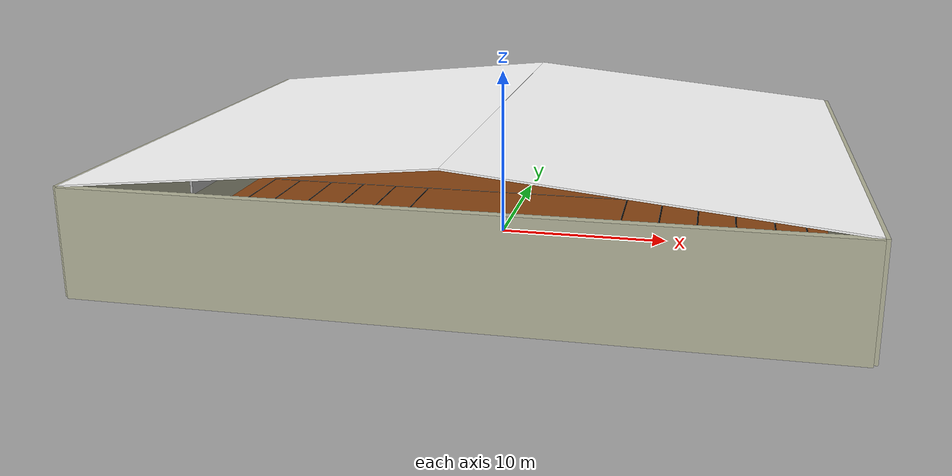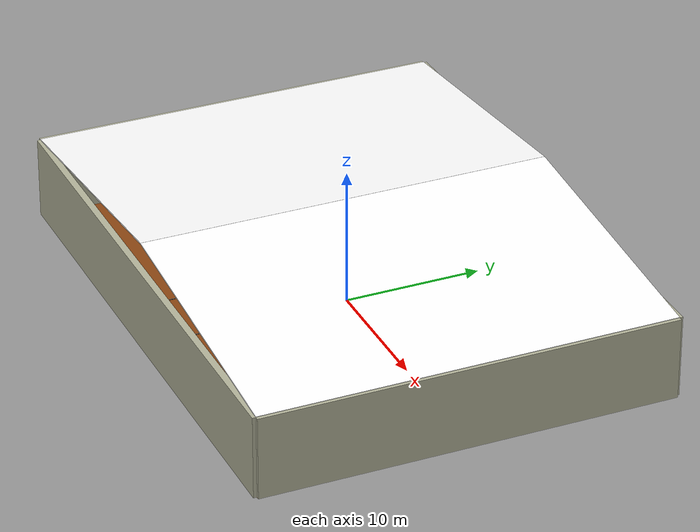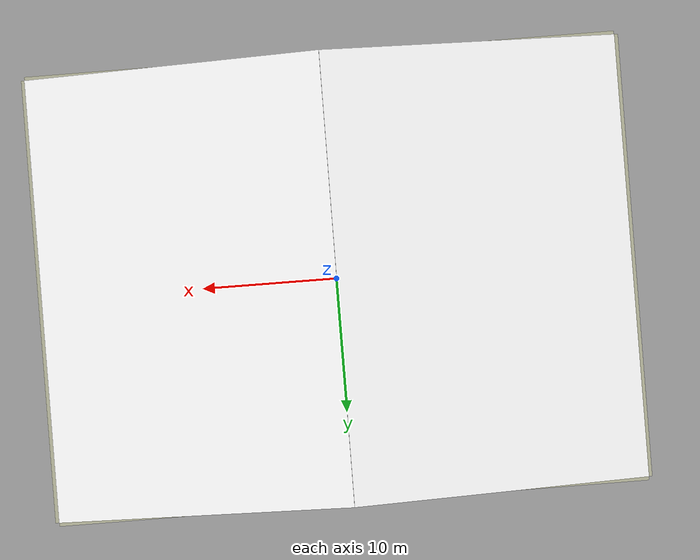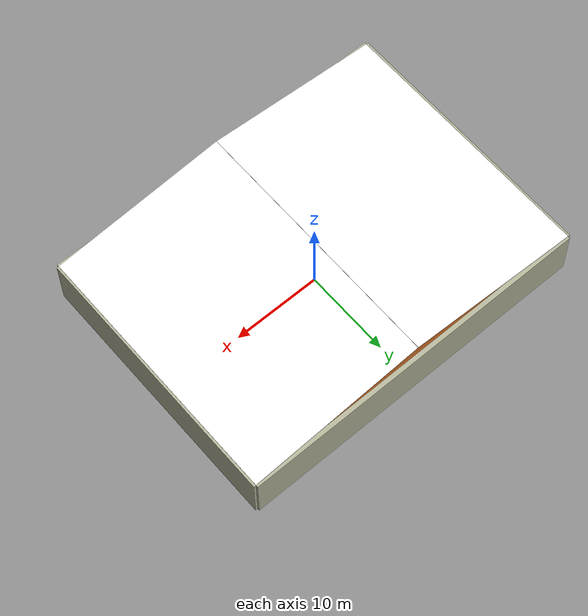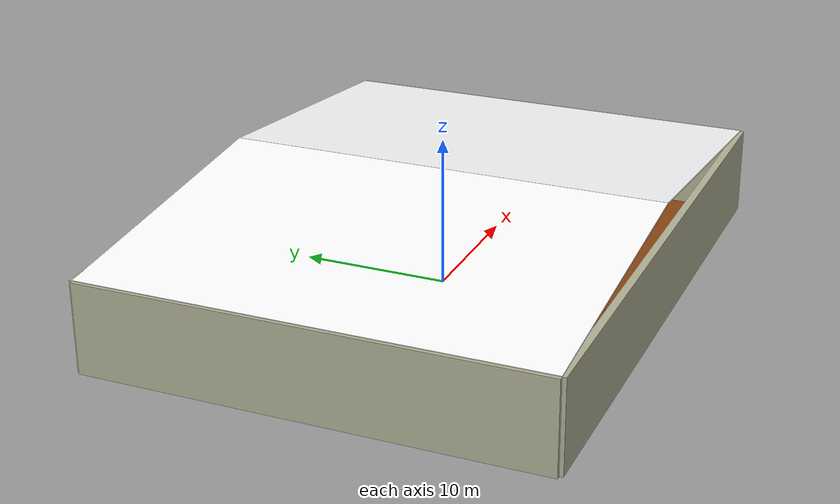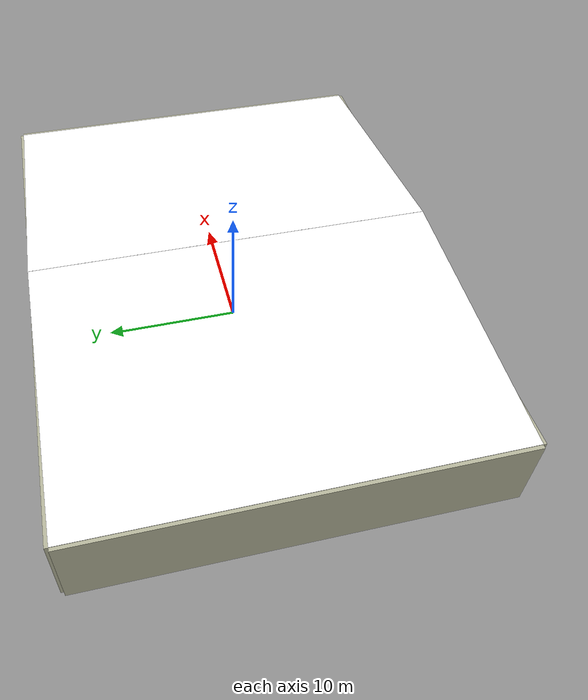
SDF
<sdf version="1.10">
 <world name="Advanced_Robotic_Warehouse_v7">
  <physics name="1ms" type="ignored">
   <max_step_size>0.001</max_step_size>
   <real_time_factor>1.0</real_time_factor>
  </physics>
  <plugin name="gz::sim::systems::Physics" filename="gz-sim-physics-system"/>
  <plugin name="gz::sim::systems::UserCommands" filename="gz-sim-user-commands-system"/>
  <plugin name="gz::sim::systems::SceneBroadcaster" filename="gz-sim-scene-broadcaster-system"/>
  <plugin name="gz::sim::systems::Contact" filename="gz-sim-contact-system"/>
  <plugin name="gz::sim::systems::Sensors" filename="gz-sim-sensors-system">
   <render_engine>ogre2</render_engine>
  </plugin>
  <gravity>0 0 -9.8</gravity>
  <atmosphere type="adiabatic"/>
  <scene>
   <ambient>0.4 0.4 0.4 1.0</ambient>
   <background>0.5 0.5 0.5 1</background>
   <shadows>true</shadows>
   <grid>false</grid>
   <origin_visual>false</origin_visual>
  </scene>
  <light type="point" name="light_1_1">
   <pose>-15 10 8 0 0 0</pose>
   <diffuse>0.8 0.8 0.7 1</diffuse>
   <specular>0.1 0.1 0.1 1</specular>
   <attenuation>
    <range>30</range>
    <linear>0.01</linear>
    <constant>0.2</constant>
    <quadratic>0.002</quadratic>
   </attenuation>
   <cast_shadows>false</cast_shadows>
  </light>
  <light type="point" name="light_1_2">
   <pose>0 10 8 0 0 0</pose>
   <diffuse>0.8 0.8 0.7 1</diffuse>
   <specular>0.1 0.1 0.1 1</specular>
   <attenuation>
    <range>30</range>
    <linear>0.01</linear>
    <constant>0.2</constant>
    <quadratic>0.002</quadratic>
   </attenuation>
   <cast_shadows>false</cast_shadows>
  </light>
  <light type="point" name="light_1_3">
   <pose>15 10 8 0 0 0</pose>
   <diffuse>0.8 0.8 0.7 1</diffuse>
   <specular>0.1 0.1 0.1 1</specular>
   <attenuation>
    <range>30</range>
    <linear>0.01</linear>
    <constant>0.2</constant>
    <quadratic>0.002</quadratic>
   </attenuation>
   <cast_shadows>false</cast_shadows>
  </light>
  <light type="point" name="light_2_1">
   <pose>-15 0 8 0 0 0</pose>
   <diffuse>0.8 0.8 0.7 1</diffuse>
   <specular>0.1 0.1 0.1 1</specular>
   <attenuation>
    <range>30</range>
    <linear>0.01</linear>
    <constant>0.2</constant>
    <quadratic>0.002</quadratic>
   </attenuation>
   <cast_shadows>false</cast_shadows>
  </light>
  <light type="point" name="light_2_2">
   <pose>0 0 8 0 0 0</pose>
   <diffuse>0.8 0.8 0.7 1</diffuse>
   <specular>0.1 0.1 0.1 1</specular>
   <attenuation>
    <range>30</range>
    <linear>0.01</linear>
    <constant>0.2</constant>
    <quadratic>0.002</quadratic>
   </attenuation>
   <cast_shadows>false</cast_shadows>
  </light>
  <light type="point" name="light_2_3">
   <pose>15 0 8 0 0 0</pose>
   <diffuse>0.8 0.8 0.7 1</diffuse>
   <specular>0.1 0.1 0.1 1</specular>
   <attenuation>
    <range>30</range>
    <linear>0.01</linear>
    <constant>0.2</constant>
    <quadratic>0.002</quadratic>
   </attenuation>
   <cast_shadows>false</cast_shadows>
  </light>
  <light type="point" name="light_3_1">
   <pose>-15 -10 8 0 0 0</pose>
   <diffuse>0.8 0.8 0.7 1</diffuse>
   <specular>0.1 0.1 0.1 1</specular>
   <attenuation>
    <range>30</range>
    <linear>0.01</linear>
    <constant>0.2</constant>
    <quadratic>0.002</quadratic>
   </attenuation>
   <cast_shadows>false</cast_shadows>
  </light>
  <light type="point" name="light_3_2">
   <pose>0 -10 8 0 0 0</pose>
   <diffuse>0.8 0.8 0.7 1</diffuse>
   <specular>0.1 0.1 0.1 1</specular>
   <attenuation>
    <range>30</range>
    <linear>0.01</linear>
    <constant>0.2</constant>
    <quadratic>0.002</quadratic>
   </attenuation>
   <cast_shadows>false</cast_shadows>
  </light>
  <light type="point" name="light_3_3">
   <pose>15 -10 8 0 0 0</pose>
   <diffuse>0.8 0.8 0.7 1</diffuse>
   <specular>0.1 0.1 0.1 1</specular>
   <attenuation>
    <range>30</range>
    <linear>0.01</linear>
    <constant>0.2</constant>
    <quadratic>0.002</quadratic>
   </attenuation>
   <cast_shadows>false</cast_shadows>
  </light>
  <include><uri>model://warehouse_ground</uri></include>
  <model name="lfr_line_north">
   <static>true</static>
   <pose>0 8 0.01 0 0 0</pose>
   <link name="link">
    <collision name="collision"><geometry><box><size>37 0.1 0.005</size></box></geometry></collision>
    <visual name="visual">
     <geometry><box><size>37 0.1 0.005</size></box></geometry>
     <material><ambient>0 0 0 1</ambient><diffuse>0 0 0 1</diffuse><specular>0 0 0 1</specular></material>
    </visual>
   </link>
  </model>
  <model name="lfr_line_south">
   <static>true</static>
   <pose>0 -8 0.01 0 0 0</pose>
   <link name="link">
    <collision name="collision"><geometry><box><size>37 0.1 0.005</size></box></geometry></collision>
    <visual name="visual">
     <geometry><box><size>37 0.1 0.005</size></box></geometry>
     <material><ambient>0 0 0 1</ambient><diffuse>0 0 0 1</diffuse><specular>0 0 0 1</specular></material>
    </visual>
   </link>
  </model>
  <model name="lfr_line_west">
   <static>true</static>
   <pose>-18.5 0 0.01 0 0 1.5707</pose>
   <link name="link">
    <collision name="collision"><geometry><box><size>16 0.1 0.005</size></box></geometry></collision>
    <visual name="visual">
     <geometry><box><size>16 0.1 0.005</size></box></geometry>
     <material><ambient>0 0 0 1</ambient><diffuse>0 0 0 1</diffuse><specular>0 0 0 1</specular></material>
    </visual>
   </link>
  </model>
  <model name="lfr_line_east">
   <static>true</static>
   <pose>18.5 0 0.01 0 0 1.5707</pose>
   <link name="link">
    <collision name="collision"><geometry><box><size>16 0.1 0.005</size></box></geometry></collision>
    <visual name="visual">
     <geometry><box><size>16 0.1 0.005</size></box></geometry>
     <material><ambient>0 0 0 1</ambient><diffuse>0 0 0 1</diffuse><specular>0 0 0 1</specular></material>
    </visual>
   </link>
  </model>
  <model name="lfr_line_aisle1">
   <static>true</static>
   <pose>-14.2 0 0.01 0 0 1.5707</pose>
   <link name="link">
    <collision name="collision"><geometry><box><size>16 0.1 0.005</size></box></geometry></collision>
    <visual name="visual">
     <geometry><box><size>16 0.1 0.005</size></box></geometry>
     <material><ambient>0 0 0 1</ambient><diffuse>0 0 0 1</diffuse><specular>0 0 0 1</specular></material>
    </visual>
   </link>
  </model>
  <model name="lfr_line_aisle2">
   <static>true</static>
   <pose>-9.4 0 0.01 0 0 1.5707</pose>
   <link name="link">
    <collision name="collision"><geometry><box><size>16 0.1 0.005</size></box></geometry></collision>
    <visual name="visual">
     <geometry><box><size>16 0.1 0.005</size></box></geometry>
     <material><ambient>0 0 0 1</ambient><diffuse>0 0 0 1</diffuse><specular>0 0 0 1</specular></material>
    </visual>
   </link>
  </model>
  <model name="lfr_line_aisle3_main">
   <static>true</static>
   <pose>0 0 0.01 0 0 1.5707</pose>
   <link name="link">
    <collision name="collision"><geometry><box><size>16 0.1 0.005</size></box></geometry></collision>
    <visual name="visual">
     <geometry><box><size>16 0.1 0.005</size></box></geometry>
     <material><ambient>0 0 0 1</ambient><diffuse>0 0 0 1</diffuse><specular>0 0 0 1</specular></material>
    </visual>
   </link>
  </model>
  <model name="lfr_line_aisle4">
   <static>true</static>
   <pose>9.4 0 0.01 0 0 1.5707</pose>
   <link name="link">
    <collision name="collision"><geometry><box><size>16 0.1 0.005</size></box></geometry></collision>
    <visual name="visual">
     <geometry><box><size>16 0.1 0.005</size></box></geometry>
     <material><ambient>0 0 0 1</ambient><diffuse>0 0 0 1</diffuse><specular>0 0 0 1</specular></material>
    </visual>
   </link>
  </model>
  <model name="lfr_line_aisle5">
   <static>true</static>
   <pose>14.2 0 0.01 0 0 1.5707</pose>
   <link name="link">
    <collision name="collision"><geometry><box><size>16 0.1 0.005</size></box></geometry></collision>
    <visual name="visual">
     <geometry><box><size>16 0.1 0.005</size></box></geometry>
     <material><ambient>0 0 0 1</ambient><diffuse>0 0 0 1</diffuse><specular>0 0 0 1</specular></material>
    </visual>
   </link>
  </model>
  <model name="lfr_line_aisle_L1">
   <static>true</static>
   <pose>-16.6 0 0.01 0 0 1.5707</pose>
   <link name="link">
    <collision name="collision"><geometry><box><size>16 0.1 0.005</size></box></geometry></collision>
    <visual name="visual">
     <geometry><box><size>16 0.1 0.005</size></box></geometry>
     <material><ambient>0 0 0 1</ambient><diffuse>0 0 0 1</diffuse><specular>0 0 0 1</specular></material>
    </visual>
   </link>
  </model>
  <model name="lfr_line_aisle_L2">
   <static>true</static>
   <pose>-11.8 0 0.01 0 0 1.5707</pose>
   <link name="link">
    <collision name="collision"><geometry><box><size>16 0.1 0.005</size></box></geometry></collision>
    <visual name="visual">
     <geometry><box><size>16 0.1 0.005</size></box></geometry>
     <material><ambient>0 0 0 1</ambient><diffuse>0 0 0 1</diffuse><specular>0 0 0 1</specular></material>
    </visual>
   </link>
  </model>
  <model name="lfr_line_aisle_L3">
   <static>true</static>
   <pose>-7.0 0 0.01 0 0 1.5707</pose>
   <link name="link">
    <collision name="collision"><geometry><box><size>16 0.1 0.005</size></box></geometry></collision>
    <visual name="visual">
     <geometry><box><size>16 0.1 0.005</size></box></geometry>
     <material><ambient>0 0 0 1</ambient><diffuse>0 0 0 1</diffuse><specular>0 0 0 1</specular></material>
    </visual>
   </link>
  </model>
  <model name="lfr_line_aisle_R1">
   <static>true</static>
   <pose>7.0 0 0.01 0 0 1.5707</pose>
   <link name="link">
    <collision name="collision"><geometry><box><size>16 0.1 0.005</size></box></geometry></collision>
    <visual name="visual">
     <geometry><box><size>16 0.1 0.005</size></box></geometry>
     <material><ambient>0 0 0 1</ambient><diffuse>0 0 0 1</diffuse><specular>0 0 0 1</specular></material>
    </visual>
   </link>
  </model>
  <model name="lfr_line_aisle_R2">
   <static>true</static>
   <pose>11.8 0 0.01 0 0 1.5707</pose>
   <link name="link">
    <collision name="collision"><geometry><box><size>16 0.1 0.005</size></box></geometry></collision>
    <visual name="visual">
     <geometry><box><size>16 0.1 0.005</size></box></geometry>
     <material><ambient>0 0 0 1</ambient><diffuse>0 0 0 1</diffuse><specular>0 0 0 1</specular></material>
    </visual>
   </link>
  </model>
  <model name="lfr_line_aisle_R3">
   <static>true</static>
   <pose>16.6 0 0.01 0 0 1.5707</pose>
   <link name="link">
    <collision name="collision"><geometry><box><size>16 0.1 0.005</size></box></geometry></collision>
    <visual name="visual">
     <geometry><box><size>16 0.1 0.005</size></box></geometry>
     <material><ambient>0 0 0 1</ambient><diffuse>0 0 0 1</diffuse><specular>0 0 0 1</specular></material>
    </visual>
   </link>
  </model>
  <model name="lfr_line_conveyor_spur">
   <static>true</static>
   <pose>0 -10.5 0.01 0 0 1.5707</pose>
   <link name="link">
    <collision name="collision"><geometry><box><size>5 0.1 0.005</size></box></geometry></collision>
    <visual name="visual">
     <geometry><box><size>5 0.1 0.005</size></box></geometry>
     <material><ambient>0 0 0 1</ambient><diffuse>0 0 0 1</diffuse><specular>0 0 0 1</specular></material>
    </visual>
   </link>
  </model>
  <model name="lfr_line_pallet_spur">
   <static>true</static>
   <pose>-5 -11 0.01 0 0 1.5707</pose>
   <link name="link">
    <collision name="collision"><geometry><box><size>6 0.1 0.005</size></box></geometry></collision>
    <visual name="visual">
     <geometry><box><size>6 0.1 0.005</size></box></geometry>
     <material><ambient>0 0 0 1</ambient><diffuse>0 0 0 1</diffuse><specular>0 0 0 1</specular></material>
    </visual>
   </link>
  </model>
  <model name="north_wall">
   <static>true</static>
   <pose>0 15 3.0 0 0 0</pose>
   <link name="link">
    <collision name="collision"><geometry><box><size>40 0.5 6</size></box></geometry></collision>
    <visual name="visual">
     <geometry><box><size>40 0.5 6</size></box></geometry>
     <material><ambient>0.7 0.7 0.6 1</ambient><diffuse>0.7 0.7 0.6 1</diffuse></material>
    </visual>
   </link>
  </model>
  <model name="south_wall">
   <static>true</static>
   <pose>0 -15 3.0 0 0 0</pose>
   <link name="link">
    <collision name="collision"><geometry><box><size>40 0.5 6</size></box></geometry></collision>
    <visual name="visual">
     <geometry><box><size>40 0.5 6</size></box></geometry>
     <material><ambient>0.7 0.7 0.6 1</ambient><diffuse>0.7 0.7 0.6 1</diffuse></material>
    </visual>
   </link>
  </model>
  <model name="east_wall">
   <static>true</static>
   <pose>20 0 3.0 0 0 1.57</pose>
   <link name="link">
    <collision name="collision"><geometry><box><size>30 0.5 6</size></box></geometry></collision>
    <visual name="visual">
     <geometry><box><size>30 0.5 6</size></box></geometry>
     <material><ambient>0.7 0.7 0.6 1</ambient><diffuse>0.7 0.7 0.6 1</diffuse></material>
    </visual>
   </link>
  </model>
  <model name="west_wall">
   <static>true</static>
   <pose>-20 0 3.0 0 0 1.57</pose>
   <link name="link">
    <collision name="collision"><geometry><box><size>30 0.5 6</size></box></geometry></collision>
    <visual name="visual">
     <geometry><box><size>30 0.5 6</size></box></geometry>
     <material><ambient>0.7 0.7 0.6 1</ambient><diffuse>0.7 0.7 0.6 1</diffuse></material>
    </visual>
   </link>
  </model>
  <model name="roof_slope_east">
   <static>true</static>
   <pose>10 0 7 0 0.0997 0</pose>
   <link name="link">
    <collision name="collision"><geometry><box><size>20.1 30 0.1</size></box></geometry></collision>
    <visual name="visual">
     <geometry><box><size>20.1 30 0.1</size></box></geometry>
     <material><ambient>1 1 1 1</ambient><diffuse>1 1 1 1</diffuse></material>
    </visual>
   </link>
  </model>
  <model name="roof_slope_west">
   <static>true</static>
   <pose>-10 0 7 0 -0.0997 0</pose>
   <link name="link">
    <collision name="collision"><geometry><box><size>20.1 30 0.1</size></box></geometry></collision>
    <visual name="visual">
     <geometry><box><size>20.1 30 0.1</size></box></geometry>
     <material><ambient>1 1 1 1</ambient><diffuse>1 1 1 1</diffuse></material>
    </visual>
   </link>
  </model>
  <model name="custom_tv_west">
   <static>true</static>
   <pose>-19.675 0 3.0 0 0 1.5707</pose>
   <link name="link">
    <collision name="collision"><geometry><box><size>4.35 0.15 2.49</size></box></geometry></collision>
    <visual name="visual">
     <geometry><box><size>4.35 0.15 2.49</size></box></geometry>
     <material>
      <script>
       <uri>model://warehouse_ground/materials/textures/images.png</uri>
       <name>Custom/ScreenWest</name>
      </script>
      <emissive>0.5 0.5 0.5 1</emissive>
     </material>
    </visual>
   </link>
  </model>
  <model name="custom_tv_south">
   <static>true</static>
   <pose>0 -14.675 3.0 0 0 0</pose>
   <link name="link">
    <collision name="collision"><geometry><box><size>4.35 0.15 2.49</size></box></geometry></collision>
    <visual name="visual">
     <geometry><box><size>4.35 0.15 2.49</size></box></geometry>
     <material>
      <script>
       <uri>model://warehouse_ground/materials/textures/images.png</uri>
       <name>Custom/ScreenSouth</name>
      </script>
      <emissive>0.5 0.5 0.5 1</emissive>
     </material>
    </visual>
   </link>
  </model>
 </world>
</sdf>

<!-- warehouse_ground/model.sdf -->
<sdf version="1.10">
  <model name="warehouse_ground">
    <static>true</static>
    <link name="link">
      <collision name="collision">
        <geometry>
          <plane>
            <normal>0 0 1</normal>
            <!-- *** MODIFIED SIZE *** -->
            <size>40 30</size>
          </plane>
        </geometry>
      </collision>

      <visual name="visual">
        <geometry>
          <plane>
            <normal>0 0 1</normal>
             <!-- *** MODIFIED SIZE *** -->
            <size>40 30</size>
          </plane>
        </geometry>
        <!-- *** MODIFIED MATERIAL FOR BROWN/COFFEE COLOR *** -->
        <material>
          <!-- RGB values for a brown color (0.54, 0.27, 0.07) -->
          <ambient>0.54 0.27 0.07 1</ambient> <!-- Darker brown for ambient -->
          <diffuse>0.54 0.27 0.07 1</diffuse> <!-- Main brown color -->
          <specular>0.1 0.1 0.1 1</specular> <!-- Low shininess -->
        </material>
      </visual>
    </link>
  </model>
</sdf>
